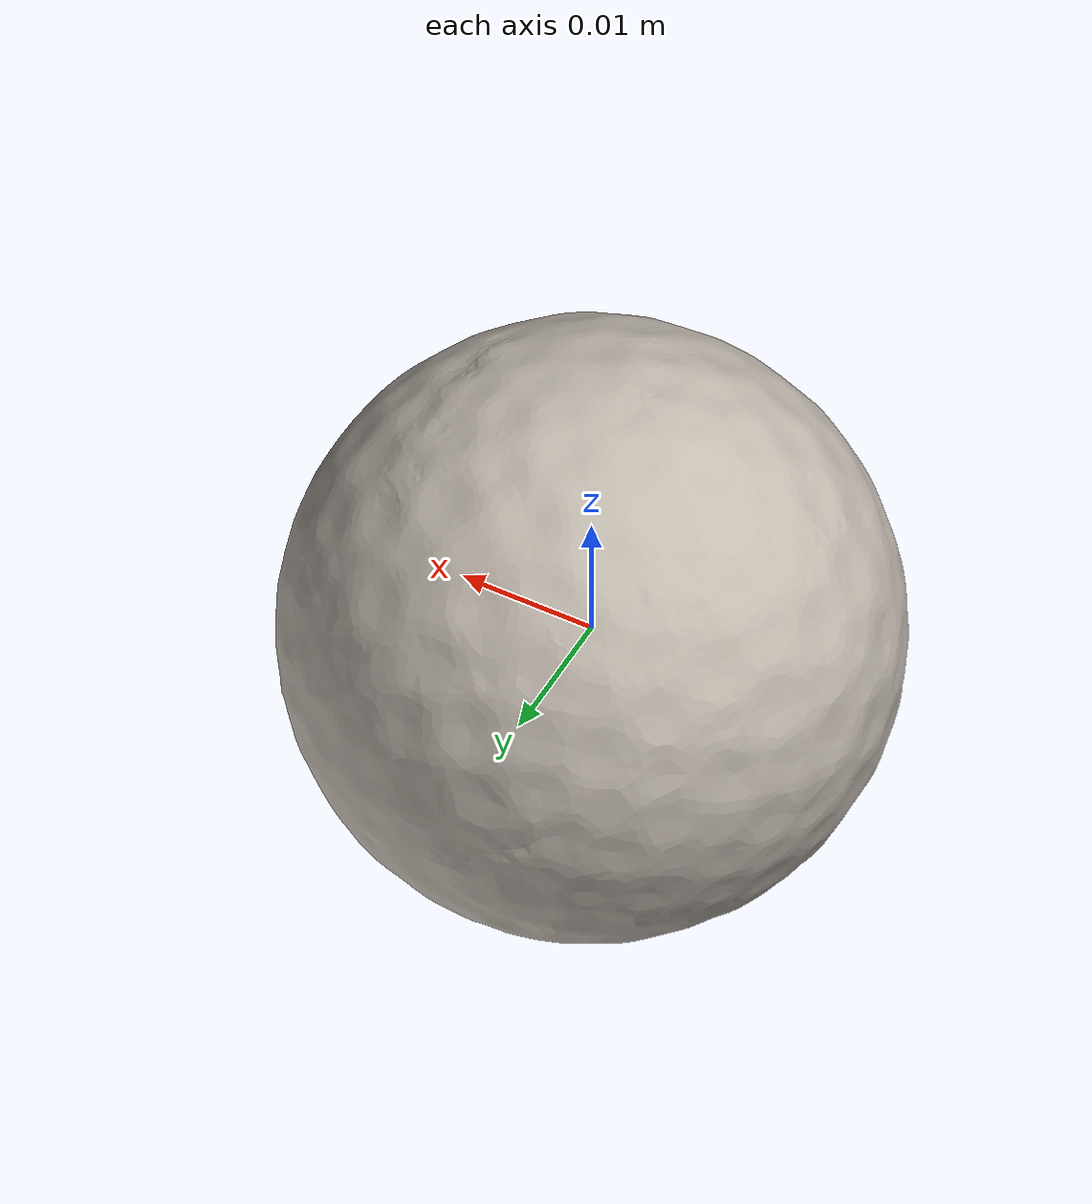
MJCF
<mujoco model="golf_ball">
  <compiler angle="radian" />

  <asset>
    <mesh name="golf_ball_visual_mesh" file="golf_ball/textured.obj" />
    <mesh name="golf_ball_collision_mesh_0" file="golf_ball/textured_coacd_0.stl" />
    <texture name="golf_ball_texture" type="2d" file="golf_ball/texture_map.png" />
    <material name="golf_ball_material" texture="golf_ball_texture" />
  </asset>

  <worldbody>
    <body name="golf_ball" pos="0 0 0" euler="0 0 0">
      <freejoint name="golf_ball_joint" />
      <geom name="golf_ball_visual_geom" type="mesh" mesh="golf_ball_visual_mesh" material="golf_ball_material" pos="0.0 -0.0 -0.0" euler="0 0 0" contype="0" conaffinity="0" group="0" />
      <geom name="golf_ball_collision_geom_0" type="mesh" mesh="golf_ball_collision_mesh_0" pos="0.0 -0.0 -0.0" euler="0 0 0" contype="1" conaffinity="1" group="3" />
      <inertial pos="0 0 0" euler="0 0 0" mass="0.046" diaginertia="0.001 0.001 0.001" />
    </body>
  </worldbody>
</mujoco>
